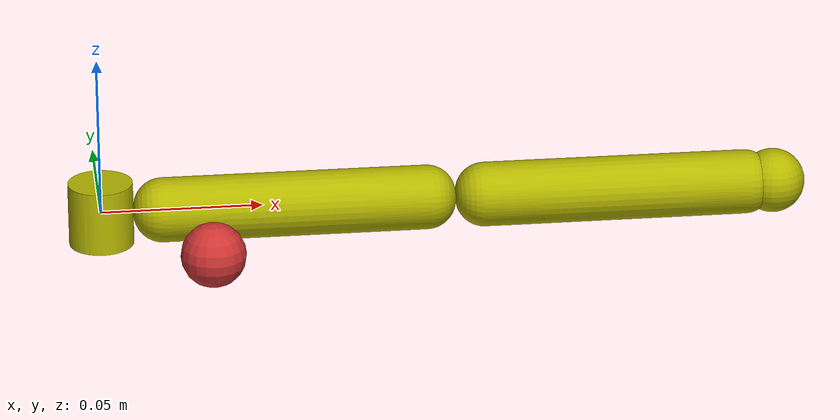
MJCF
<mujoco model="param_reacher">
    <compiler angle="radian" />
    <default>
        <geom contype="0" friction="1 0.1 0.1" rgba="0.7 0.7 0 1" />
    </default>
    <asset>
        <mesh file="boundary.STL" />
        <mesh file="fingertip.STL" />
        <mesh file="link0.STL" />
        <mesh file="link1.STL" />
        <mesh file="link2.STL" />
    </asset>
    <worldbody>
        <body>
            <geom mesh="boundary" name="boundary" pos="0 0 0" type="mesh" />
        </body>
        <body name="link0" pos="0 0 0">
            <geom conaffinity="2" contype="2" mesh="link0" name="link0" pos="0 0 0" type="mesh" />
            <body name="link1" pos="0 0 0">
                <joint axis="0 0 1" name="joint0" pos="0.0 0 0" />
                <geom conaffinity="2" mesh="link1" name="link1" pos="0 0 0" type="mesh" />
                <body name="link2" pos="0 0 0">
                    <joint axis="0 0 1" limited="true" name="joint1" pos="0.11 0 0" range="-3.0 3.0" />
                    <geom conaffinity="2" mesh="link2" name="link2" pos="0 0 0" type="mesh" />
                    <body name="fingertip" pos="0 0 0" />
                    <geom conaffinity="2" contype="2" mesh="fingertip" name="fingertip" pos="0 0 0" type="mesh" />
                </body>
            </body>
        </body>
        <body name="target">
            <geom conaffinity="0" contype="1" name="target" pos="0.032 -0.036 0" rgba="0.8 0.2 0.2 1" size="0.01" type="sphere" />
        </body>
    </worldbody>
    <actuator>

        <velocity ctrllimited="true" ctrlrange="-1.0 1.0" gear="0.05" joint="joint0" />
        <velocity ctrllimited="true" ctrlrange="-1.0 1.0" gear="0.05" joint="joint1" />
    </actuator>
</mujoco>
